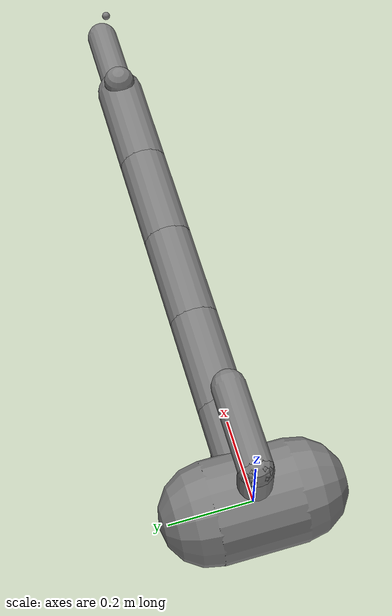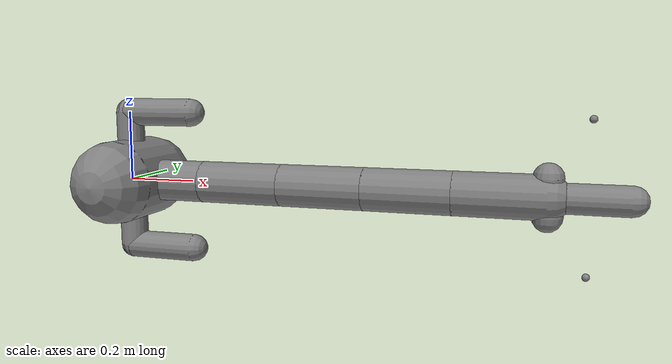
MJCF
<mujoco model="arm3d">
    <compiler inertiafromgeom="true" angle="radian" coordinate="local" />
    <option timestep="0.01" gravity="0 0 0" iterations="20" integrator="Euler" />

    <default>
        <joint armature='0.04' damping="1" limited="true"/>
        <geom friction=".8 .1 .1" density="300" margin="0.002" condim="1" contype="1" conaffinity="1"/>
    </default>

    <worldbody>
        <body name="palm" pos="0 0 0">
            <geom type="capsule" fromto="0 -0.1 0 0 0.1 0" size="0.12"/>
            <body name="proximal_1" pos="0 0 0">
                <joint name="proximal_j_1" type="hinge" pos="0 0 0" axis="0 1 0" range="-2.5236 2.3963" damping="1.0" />
                <geom type="capsule"  fromto="0 0 0 0.24 0 0" size="0.06" contype="1" conaffinity="1"/>
                <body name="distal_1" pos="0.24 0 0">
                    <joint name="distal_j_1" type="hinge" pos="0 0 0" axis="0 1 0" range="-2.3213 2.3" damping="1.0"/>
                    <geom type="capsule"  fromto="0 0 0 0.24 0 0" size="0.06" contype="1" conaffinity="1"/>
                    <body name="distal_2" pos="0.24 0 0">
                        <joint name="distal_j_2" type="hinge" pos="0 0 0" axis="0 1 0" range="-2.3213 2.3" damping="1.0"/>
                        <geom type="capsule" fromto="0 0 0 0.24 0 0" size="0.06" contype="1" conaffinity="1"/>
                        <body name="distal_4" pos="0.24 0 0">
                                <joint name="distal_j_3" type="hinge" pos="0 0 0" axis="0 1 0" range="-2.3213 2.3" damping="1.0"/>
                                <geom type="capsule" fromto="0 0 0 0.24 0 0" size="0.06" contype="1" conaffinity="1"/>
                                <body name="distal_5" pos="0.24 0 0">
                                    <joint name="distal_j_4" type="hinge" pos="0 0 0" axis="0 1 0" range="-2.3213 2.3" damping="1.0"/>
                                    <geom type="capsule" fromto="0 0 0 0.24 0 0" size="0.06" contype="1" conaffinity="1"/>
                                    <body name="distal_6" pos="0.24 0 0">
                                        <site name="tip arml" pos="0.1 0 -0.2" size="0.01" />
                                        <site name="tip armr" pos="0.1 0 0.2" size="0.01" />
                                        <geom type="capsule" fromto="0 0 -0.05 0 0 0.05" size="0.04" contype="1" conaffinity="1" density ="1200"/>
                                        <geom type="capsule" fromto="0 0 0.0 0.2 0 0.0" size="0.04" contype="1" conaffinity="1" />
                                        <geom type="capsule" fromto="0 0 0.0 0.2 0 0.0" size="0.04" contype="1" conaffinity="1" />
                                    </body>
                                </body>
                        </body>
                    </body>
                </body>
            </body>
        </body>
        <body name="object" pos="0.0 0.0 0.0">
            <geom type="capsule" fromto="0 0 -0.2 0 0 0.2" size="0.04" contype="1" conaffinity="1" />
            <geom type="capsule" fromto="0 0 -0.2 0.2 0 -0.2" size="0.04" contype="1" conaffinity="1" />
            <geom type="capsule" fromto="0 0 0.2 0.2 0 0.2" size="0.04" contype="1" conaffinity="1" />
            <joint name="obj_slidez" type="slide" pos="0.025 0.025 0.025" axis="0 0 1" range="-10.3213 10.3" damping="5.0"/>
            <body name="distal_10" pos="0 0 0">
                <site name="obj_pos" pos="0.025 0.025 0.025" size="0.01" />
            </body>
        </body>

        <body name="goal" pos="0 0 0">
            <geom rgba="1. 0. 0. 1" type="box" size="0.05 0.05 0.05" density='0.00001' contype="0" conaffinity="0"/>
            <body name="distal_11" pos="0 0 0">
                <site name="goal_pos" pos="0.025 0.025 0.025" size="0.01" />
            </body>
        </body>
    </worldbody>

    <actuator>
        <motor joint="proximal_j_1" ctrlrange="-2 2" ctrllimited="true"/>
        <motor joint="distal_j_1" ctrlrange="-2 2" ctrllimited="true"/>
        <motor joint="distal_j_2" ctrlrange="-2 2" ctrllimited="true"/>
        <motor joint="distal_j_3" ctrlrange="-2 2" ctrllimited="true"/>
        <motor joint="distal_j_4" ctrlrange="-2 2" ctrllimited="true"/>
    </actuator>
</mujoco>
